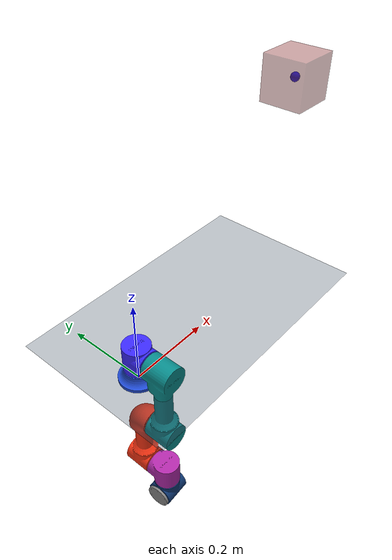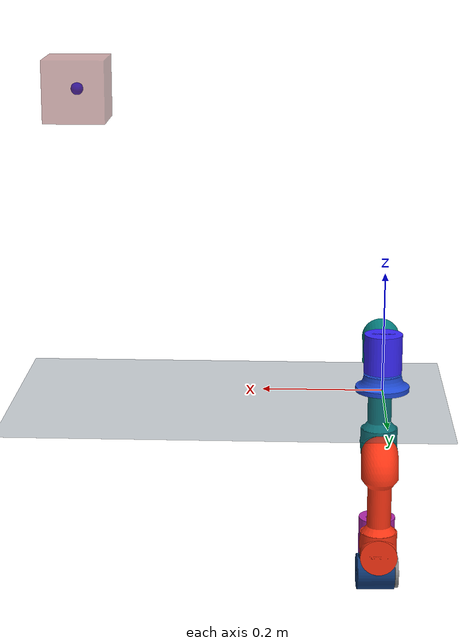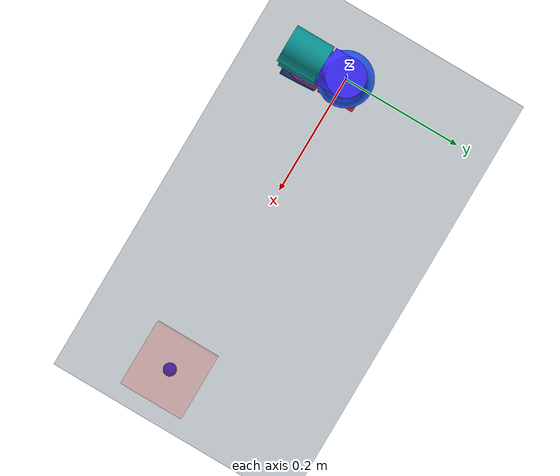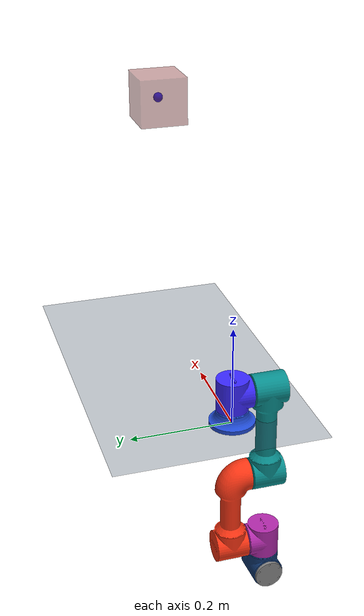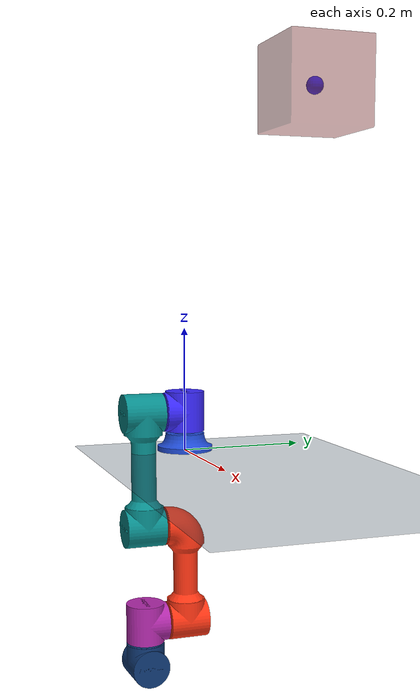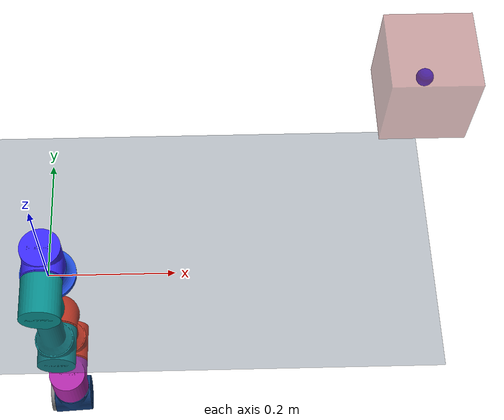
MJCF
<mujoco model="manipulator scene">
  <include file="mockway_description.xml"/>

  <statistic center="0.3 0 0.3" extent="0.8" meansize="0.08"/>

  <visual>
    <headlight diffuse="0.6 0.6 0.6" ambient="0.1 0.1 0.1" specular="0 0 0"/>
    <global azimuth="120" elevation="-20"/>
  </visual>

  <asset>
    <texture name="grid" type="2d" builtin="checker" rgb1=".2 .3 .4" rgb2=".1 0.15 0.2" width="512" height="512"
      mark="cross" markrgb=".8 .8 .8"/>
    <material name="grid" texture="grid" texrepeat="1 1" texuniform="true"/>
  </asset>

  <worldbody>
    <light pos="0 0 1.5" directional="true"/>
    <geom name="floor" size="1 1 0.01" type="plane" material="grid"/>
    <!-- 目标点 -->
    <body name="target" pos="0.5 0 .5" quat="0 1 0 0" mocap="true">
      <geom type="box" size=".05 .05 .05" contype="0" conaffinity="0" rgba=".6 .3 .3 .5"/>
      <site type="sphere" size="0.01" rgba="0 0 1 1" group="1"/>
    </body>
  </worldbody>

</mujoco>

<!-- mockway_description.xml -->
<mujoco model="mockway_description">
  <compiler angle="radian" meshdir="../meshes" autolimits="true"/>
  <option integrator="implicitfast"/>

  <default>
    <default class="mockway">
      <default class="visual">
        <geom type="mesh" contype="0" conaffinity="0" group="2"/>
      </default>
      <default class="collision">
        <geom type="mesh" group="3"/>
      </default>
      <joint axis="0 0 1"/>
    </default>
  </default>

  <asset>
    <mesh name="base_link_mesh" file="base_link.stl"/>
    <mesh name="link1_mesh" file="link1.stl"/>
    <mesh name="link2_mesh" file="link2.stl"/>
    <mesh name="link3_mesh" file="link3.stl"/>
    <mesh name="link4_mesh" file="link4.stl"/>
    <mesh name="link5_mesh" file="link5.stl"/>
    <mesh name="link6_mesh" file="link6.stl"/>

    <material name="base_blue" rgba="0.127 0.301 0.847 1.000"/>
    <material name="link1_purple" rgba="0.231 0.162 1.000 1.000"/>
    <material name="link2_teal" rgba="0.031 0.558 0.558 1.000"/>
    <material name="link3_orange" rgba="1.000 0.212 0.080 1.000"/>
    <material name="link4_magenta" rgba="0.701 0.162 0.672 1.000"/>
    <material name="link5_blue" rgba="0.061 0.223 0.456 1.000"/>
    <material name="link6_gray" rgba="0.527 0.527 0.527 1.000"/>
  </asset>

  <worldbody>
    <body name="base_link" childclass="mockway">
      <inertial pos="0 0 0.014" mass="0.097" fullinertia="0.000049 0.000049 0.000080 0 0 0"/>
      <geom class="visual" mesh="base_link_mesh" material="base_blue"/>
      <geom class="collision" mesh="base_link_mesh"/>

      <body name="link1" pos="0 0 0.064" euler="0 0 0">
        <joint name="joint1" axis="0 0 1" range="-6.280 6.280"/>
        <inertial pos="0 -0.003 -0.005" mass="0.378" fullinertia="0.000195 0.000176 0.000204 0 0 0.000005"/>
        <geom class="visual" mesh="link1_mesh" material="link1_purple"/>
        <geom class="collision" mesh="link1_mesh"/>

        <body name="link2" pos="0 0 0" euler="1.571 0 3.1415">
          <joint name="joint2" axis="0 0 1" range="-6.280 6.280"/>
          <inertial pos="0 0.035 0.069" mass="0.568" fullinertia="0.002661 0.000305 0.002654 0 0 -0.000043"/>
          <geom class="visual" mesh="link2_mesh" material="link2_teal"/>
          <geom class="collision" mesh="link2_mesh"/>

          <body name="link3" pos="0 0.190 0" euler="0 0 0">
            <joint name="joint3" axis="0 0 1" range="-3.140 3.140"/>
            <inertial pos="0 0.131 0.006" mass="0.488" fullinertia="0.001818 0.000257 0.001814 0 0 0.000079"/>
            <geom class="visual" mesh="link3_mesh" material="link3_orange"/>
            <geom class="collision" mesh="link3_mesh"/>

            <body name="link4" pos="0 0.163 0" euler="0 0 0">
              <joint name="joint4" axis="0 0 1" range="-6.280 6.280"/>
              <inertial pos="0 0.005 0.068" mass="0.378" fullinertia="0.000195 0.000204 0.000176 0 0 -0.000005"/>
              <geom class="visual" mesh="link4_mesh" material="link4_magenta"/>
              <geom class="collision" mesh="link4_mesh"/>

              <body name="link5" pos="0 0 0.071" euler="-1.571 0 1.517">
                <joint name="joint5" axis="0 0 1" range="-6.280 6.280"/>
                <inertial pos="0 -0.005 0.068" mass="0.378" fullinertia="0.000195 0.000204 0.000176 0 0 0.000005"/>
                <geom class="visual" mesh="link5_mesh" material="link5_blue"/>
                <geom class="collision" mesh="link5_mesh"/>

                <body name="link6" pos="0 -0.039 0.071" euler="1.571 0 0">
                  <joint name="joint6" axis="0 0 1" range="-6.280 6.280"/>
                  <inertial pos="0 0 -0.004" mass="0.016" fullinertia="0.000003 0.000003 0.000006 0 0 0"/>
                  <geom class="visual" mesh="link6_mesh" material="link6_gray"/>
                  <geom class="collision" mesh="link6_mesh"/>
                </body>
              </body>
            </body>
          </body>
        </body>
      </body>
    </body>
  </worldbody>

  <actuator>
    <motor name="joint1_motor" joint="joint1" gear="1"/>
    <motor name="joint2_motor" joint="joint2" gear="1"/>
    <motor name="joint3_motor" joint="joint3" gear="1"/>
    <motor name="joint4_motor" joint="joint4" gear="1"/>
    <motor name="joint5_motor" joint="joint5" gear="1"/>
    <motor name="joint6_motor" joint="joint6" gear="1"/>
  </actuator>

  <keyframe>
    <key name="home" qpos="0 0 0 0 0 0"/>
  </keyframe>
</mujoco>
